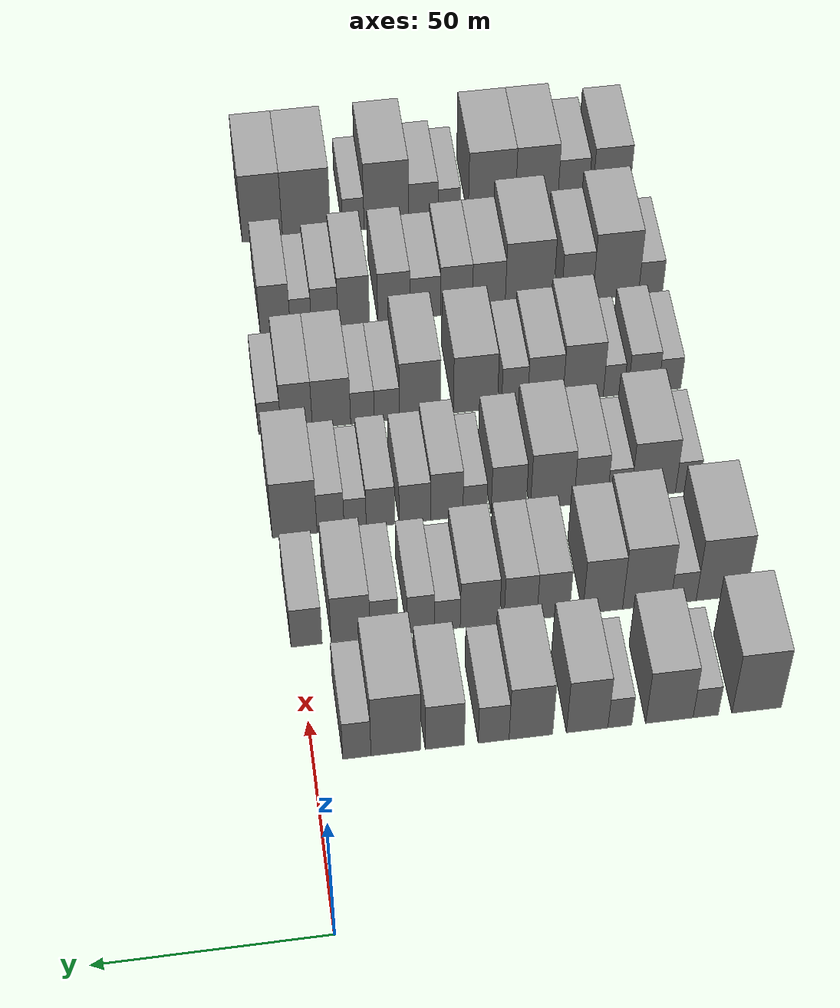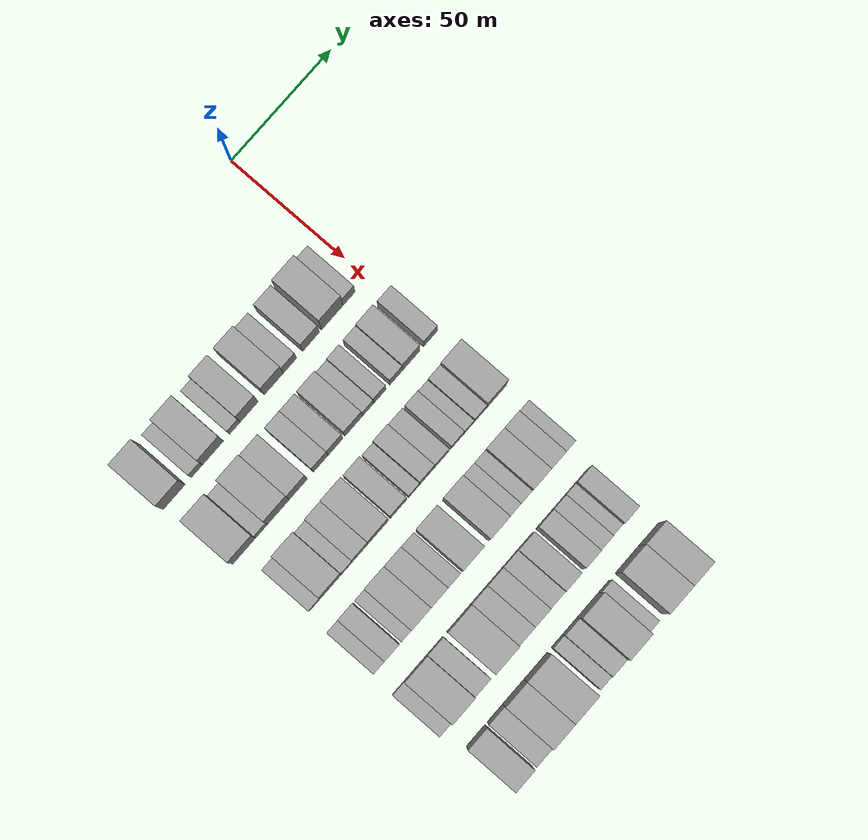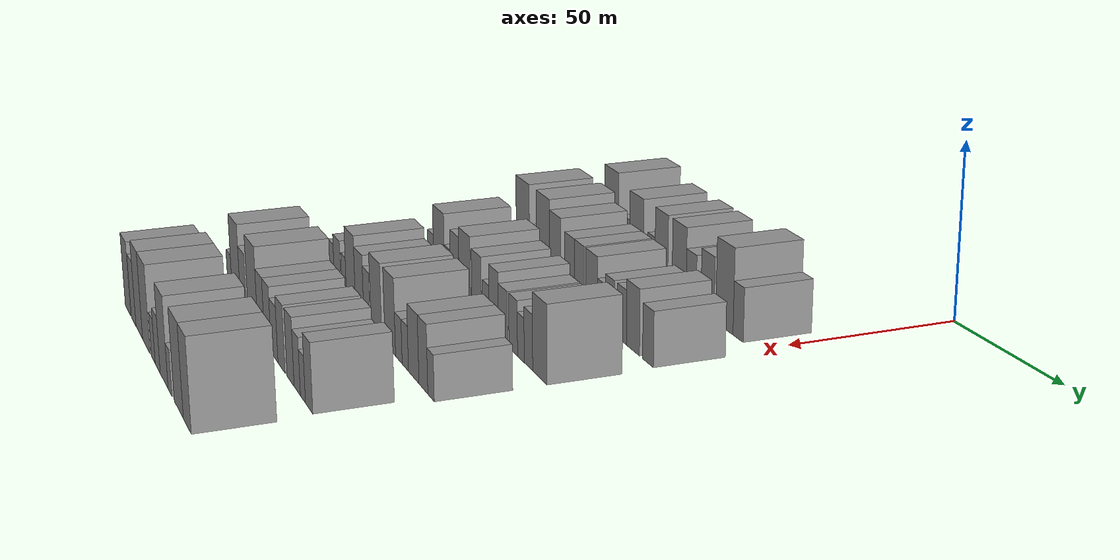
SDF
<sdf version="1.6">
 <world name="default">
  <model name="building_49">
   <static>1</static>
   <pose>50.0000 -95.9349 0 0.000000 0.000000 0.000000</pose>
   <link name="link">
    <pose>0 0 12.00 0 0 0</pose>
    <collision name="collision"><geometry><box><size>20.0000 10.8196 24.0000</size></box></geometry></collision>
    <visual name="visual">
     <cast_shadows>0</cast_shadows>
     <geometry><box><size>20.0000 10.8196 24.0000</size></box></geometry>
     <material>
      <script>
       <uri>model://grey_wall/materials/scripts</uri>
       <uri>model://grey_wall/materials/textures</uri>
       <name>vrc/grey_wall</name>
      </script>
     </material>
    </visual>
   </link>
  </model>
  <model name="building_50">
   <static>1</static>
   <pose>50.0000 -84.7681 0 0.000000 0.000000 0.000000</pose>
   <link name="link">
    <pose>0 0 6.00 0 0 0</pose>
    <collision name="collision"><geometry><box><size>20.0000 5.5140 12.0000</size></box></geometry></collision>
    <visual name="visual">
     <cast_shadows>0</cast_shadows>
     <geometry><box><size>20.0000 5.5140 12.0000</size></box></geometry>
     <material>
      <script>
       <uri>model://grey_wall/materials/scripts</uri>
       <uri>model://grey_wall/materials/textures</uri>
       <name>vrc/grey_wall</name>
      </script>
     </material>
    </visual>
   </link>
  </model>
  <model name="building_51">
   <static>1</static>
   <pose>50.0000 -76.8335 0 0.000000 0.000000 0.000000</pose>
   <link name="link">
    <pose>0 0 10.50 0 0 0</pose>
    <collision name="collision"><geometry><box><size>20.0000 10.3552 21.0000</size></box></geometry></collision>
    <visual name="visual">
     <cast_shadows>0</cast_shadows>
     <geometry><box><size>20.0000 10.3552 21.0000</size></box></geometry>
     <material>
      <script>
       <uri>model://grey_wall/materials/scripts</uri>
       <uri>model://grey_wall/materials/textures</uri>
       <name>vrc/grey_wall</name>
      </script>
     </material>
    </visual>
   </link>
  </model>
  <model name="building_52">
   <static>1</static>
   <pose>50.0000 -66.0445 0 0.000000 0.000000 0.000000</pose>
   <link name="link">
    <pose>0 0 6.00 0 0 0</pose>
    <collision name="collision"><geometry><box><size>20.0000 5.2229 12.0000</size></box></geometry></collision>
    <visual name="visual">
     <cast_shadows>0</cast_shadows>
     <geometry><box><size>20.0000 5.2229 12.0000</size></box></geometry>
     <material>
      <script>
       <uri>model://grey_wall/materials/scripts</uri>
       <uri>model://grey_wall/materials/textures</uri>
       <name>vrc/grey_wall</name>
      </script>
     </material>
    </visual>
   </link>
  </model>
  <model name="building_53">
   <static>1</static>
   <pose>50.0000 -58.9326 0 0.000000 0.000000 0.000000</pose>
   <link name="link">
    <pose>0 0 10.50 0 0 0</pose>
    <collision name="collision"><geometry><box><size>20.0000 9.0008 21.0000</size></box></geometry></collision>
    <visual name="visual">
     <cast_shadows>0</cast_shadows>
     <geometry><box><size>20.0000 9.0008 21.0000</size></box></geometry>
     <material>
      <script>
       <uri>model://grey_wall/materials/scripts</uri>
       <uri>model://grey_wall/materials/textures</uri>
       <name>vrc/grey_wall</name>
      </script>
     </material>
    </visual>
   </link>
  </model>
  <model name="building_54">
   <static>1</static>
   <pose>50.0000 -46.7122 0 0.000000 0.000000 0.000000</pose>
   <link name="link">
    <pose>0 0 10.50 0 0 0</pose>
    <collision name="collision"><geometry><box><size>20.0000 9.4400 21.0000</size></box></geometry></collision>
    <visual name="visual">
     <cast_shadows>0</cast_shadows>
     <geometry><box><size>20.0000 9.4400 21.0000</size></box></geometry>
     <material>
      <script>
       <uri>model://grey_wall/materials/scripts</uri>
       <uri>model://grey_wall/materials/textures</uri>
       <name>vrc/grey_wall</name>
      </script>
     </material>
    </visual>
   </link>
  </model>
  <model name="building_55">
   <static>1</static>
   <pose>50.0000 -38.6631 0 0.000000 0.000000 0.000000</pose>
   <link name="link">
    <pose>0 0 7.50 0 0 0</pose>
    <collision name="collision"><geometry><box><size>20.0000 6.6581 15.0000</size></box></geometry></collision>
    <visual name="visual">
     <cast_shadows>0</cast_shadows>
     <geometry><box><size>20.0000 6.6581 15.0000</size></box></geometry>
     <material>
      <script>
       <uri>model://grey_wall/materials/scripts</uri>
       <uri>model://grey_wall/materials/textures</uri>
       <name>vrc/grey_wall</name>
      </script>
     </material>
    </visual>
   </link>
  </model>
  <model name="building_56">
   <static>1</static>
   <pose>50.0000 -28.1345 0 0.000000 0.000000 0.000000</pose>
   <link name="link">
    <pose>0 0 9.00 0 0 0</pose>
    <collision name="collision"><geometry><box><size>20.0000 8.3990 18.0000</size></box></geometry></collision>
    <visual name="visual">
     <cast_shadows>0</cast_shadows>
     <geometry><box><size>20.0000 8.3990 18.0000</size></box></geometry>
     <material>
      <script>
       <uri>model://grey_wall/materials/scripts</uri>
       <uri>model://grey_wall/materials/textures</uri>
       <name>vrc/grey_wall</name>
      </script>
     </material>
    </visual>
   </link>
  </model>
  <model name="building_57">
   <static>1</static>
   <pose>50.0000 -17.6070 0 0.000000 0.000000 0.000000</pose>
   <link name="link">
    <pose>0 0 12.00 0 0 0</pose>
    <collision name="collision"><geometry><box><size>20.0000 10.6561 24.0000</size></box></geometry></collision>
    <visual name="visual">
     <cast_shadows>0</cast_shadows>
     <geometry><box><size>20.0000 10.6561 24.0000</size></box></geometry>
     <material>
      <script>
       <uri>model://grey_wall/materials/scripts</uri>
       <uri>model://grey_wall/materials/textures</uri>
       <name>vrc/grey_wall</name>
      </script>
     </material>
    </visual>
   </link>
  </model>
  <model name="building_58">
   <static>1</static>
   <pose>50.0000 -9.2561 0 0.000000 0.000000 0.000000</pose>
   <link name="link">
    <pose>0 0 7.50 0 0 0</pose>
    <collision name="collision"><geometry><box><size>20.0000 6.0458 15.0000</size></box></geometry></collision>
    <visual name="visual">
     <cast_shadows>0</cast_shadows>
     <geometry><box><size>20.0000 6.0458 15.0000</size></box></geometry>
     <material>
      <script>
       <uri>model://grey_wall/materials/scripts</uri>
       <uri>model://grey_wall/materials/textures</uri>
       <name>vrc/grey_wall</name>
      </script>
     </material>
    </visual>
   </link>
  </model>
  <model name="building_165">
   <static>1</static>
   <pose>79.0000 -94.0342 0 0.000000 0.000000 0.000000</pose>
   <link name="link">
    <pose>0 0 12.00 0 0 0</pose>
    <collision name="collision"><geometry><box><size>20.0000 11.3489 24.0000</size></box></geometry></collision>
    <visual name="visual">
     <cast_shadows>0</cast_shadows>
     <geometry><box><size>20.0000 11.3489 24.0000</size></box></geometry>
     <material>
      <script>
       <uri>model://grey_wall/materials/scripts</uri>
       <uri>model://grey_wall/materials/textures</uri>
       <name>vrc/grey_wall</name>
      </script>
     </material>
    </visual>
   </link>
  </model>
  <model name="building_166">
   <static>1</static>
   <pose>79.0000 -85.4858 0 0.000000 0.000000 0.000000</pose>
   <link name="link">
    <pose>0 0 6.00 0 0 0</pose>
    <collision name="collision"><geometry><box><size>20.0000 5.7478 12.0000</size></box></geometry></collision>
    <visual name="visual">
     <cast_shadows>0</cast_shadows>
     <geometry><box><size>20.0000 5.7478 12.0000</size></box></geometry>
     <material>
      <script>
       <uri>model://grey_wall/materials/scripts</uri>
       <uri>model://grey_wall/materials/textures</uri>
       <name>vrc/grey_wall</name>
      </script>
     </material>
    </visual>
   </link>
  </model>
  <model name="building_167">
   <static>1</static>
   <pose>79.0000 -77.2074 0 0.000000 0.000000 0.000000</pose>
   <link name="link">
    <pose>0 0 12.00 0 0 0</pose>
    <collision name="collision"><geometry><box><size>20.0000 10.8091 24.0000</size></box></geometry></collision>
    <visual name="visual">
     <cast_shadows>0</cast_shadows>
     <geometry><box><size>20.0000 10.8091 24.0000</size></box></geometry>
     <material>
      <script>
       <uri>model://grey_wall/materials/scripts</uri>
       <uri>model://grey_wall/materials/textures</uri>
       <name>vrc/grey_wall</name>
      </script>
     </material>
    </visual>
   </link>
  </model>
  <model name="building_168">
   <static>1</static>
   <pose>79.0000 -67.3506 0 0.000000 0.000000 0.000000</pose>
   <link name="link">
    <pose>0 0 10.50 0 0 0</pose>
    <collision name="collision"><geometry><box><size>20.0000 8.9043 21.0000</size></box></geometry></collision>
    <visual name="visual">
     <cast_shadows>0</cast_shadows>
     <geometry><box><size>20.0000 8.9043 21.0000</size></box></geometry>
     <material>
      <script>
       <uri>model://grey_wall/materials/scripts</uri>
       <uri>model://grey_wall/materials/textures</uri>
       <name>vrc/grey_wall</name>
      </script>
     </material>
    </visual>
   </link>
  </model>
  <model name="building_169">
   <static>1</static>
   <pose>79.0000 -56.2754 0 0.000000 0.000000 0.000000</pose>
   <link name="link">
    <pose>0 0 9.00 0 0 0</pose>
    <collision name="collision"><geometry><box><size>20.0000 7.2462 18.0000</size></box></geometry></collision>
    <visual name="visual">
     <cast_shadows>0</cast_shadows>
     <geometry><box><size>20.0000 7.2462 18.0000</size></box></geometry>
     <material>
      <script>
       <uri>model://grey_wall/materials/scripts</uri>
       <uri>model://grey_wall/materials/textures</uri>
       <name>vrc/grey_wall</name>
      </script>
     </material>
    </visual>
   </link>
  </model>
  <model name="building_170">
   <static>1</static>
   <pose>79.0000 -48.9770 0 0.000000 0.000000 0.000000</pose>
   <link name="link">
    <pose>0 0 9.00 0 0 0</pose>
    <collision name="collision"><geometry><box><size>20.0000 7.3505 18.0000</size></box></geometry></collision>
    <visual name="visual">
     <cast_shadows>0</cast_shadows>
     <geometry><box><size>20.0000 7.3505 18.0000</size></box></geometry>
     <material>
      <script>
       <uri>model://grey_wall/materials/scripts</uri>
       <uri>model://grey_wall/materials/textures</uri>
       <name>vrc/grey_wall</name>
      </script>
     </material>
    </visual>
   </link>
  </model>
  <model name="building_171">
   <static>1</static>
   <pose>79.0000 -39.9403 0 0.000000 0.000000 0.000000</pose>
   <link name="link">
    <pose>0 0 9.00 0 0 0</pose>
    <collision name="collision"><geometry><box><size>20.0000 8.7228 18.0000</size></box></geometry></collision>
    <visual name="visual">
     <cast_shadows>0</cast_shadows>
     <geometry><box><size>20.0000 8.7228 18.0000</size></box></geometry>
     <material>
      <script>
       <uri>model://grey_wall/materials/scripts</uri>
       <uri>model://grey_wall/materials/textures</uri>
       <name>vrc/grey_wall</name>
      </script>
     </material>
    </visual>
   </link>
  </model>
  <model name="building_172">
   <static>1</static>
   <pose>79.0000 -32.7329 0 0.000000 0.000000 0.000000</pose>
   <link name="link">
    <pose>0 0 6.00 0 0 0</pose>
    <collision name="collision"><geometry><box><size>20.0000 5.6920 12.0000</size></box></geometry></collision>
    <visual name="visual">
     <cast_shadows>0</cast_shadows>
     <geometry><box><size>20.0000 5.6920 12.0000</size></box></geometry>
     <material>
      <script>
       <uri>model://grey_wall/materials/scripts</uri>
       <uri>model://grey_wall/materials/textures</uri>
       <name>vrc/grey_wall</name>
      </script>
     </material>
    </visual>
   </link>
  </model>
  <model name="building_173">
   <static>1</static>
   <pose>79.0000 -26.8521 0 0.000000 0.000000 0.000000</pose>
   <link name="link">
    <pose>0 0 7.50 0 0 0</pose>
    <collision name="collision"><geometry><box><size>20.0000 6.0697 15.0000</size></box></geometry></collision>
    <visual name="visual">
     <cast_shadows>0</cast_shadows>
     <geometry><box><size>20.0000 6.0697 15.0000</size></box></geometry>
     <material>
      <script>
       <uri>model://grey_wall/materials/scripts</uri>
       <uri>model://grey_wall/materials/textures</uri>
       <name>vrc/grey_wall</name>
      </script>
     </material>
    </visual>
   </link>
  </model>
  <model name="building_174">
   <static>1</static>
   <pose>79.0000 -18.7270 0 0.000000 0.000000 0.000000</pose>
   <link name="link">
    <pose>0 0 7.50 0 0 0</pose>
    <collision name="collision"><geometry><box><size>20.0000 6.1805 15.0000</size></box></geometry></collision>
    <visual name="visual">
     <cast_shadows>0</cast_shadows>
     <geometry><box><size>20.0000 6.1805 15.0000</size></box></geometry>
     <material>
      <script>
       <uri>model://grey_wall/materials/scripts</uri>
       <uri>model://grey_wall/materials/textures</uri>
       <name>vrc/grey_wall</name>
      </script>
     </material>
    </visual>
   </link>
  </model>
  <model name="building_175">
   <static>1</static>
   <pose>79.0000 -11.3452 0 0.000000 0.000000 0.000000</pose>
   <link name="link">
    <pose>0 0 9.00 0 0 0</pose>
    <collision name="collision"><geometry><box><size>20.0000 8.5832 18.0000</size></box></geometry></collision>
    <visual name="visual">
     <cast_shadows>0</cast_shadows>
     <geometry><box><size>20.0000 8.5832 18.0000</size></box></geometry>
     <material>
      <script>
       <uri>model://grey_wall/materials/scripts</uri>
       <uri>model://grey_wall/materials/textures</uri>
       <name>vrc/grey_wall</name>
      </script>
     </material>
    </visual>
   </link>
  </model>
  <model name="building_176">
   <static>1</static>
   <pose>79.0000 -1.6232 0 0.000000 0.000000 0.000000</pose>
   <link name="link">
    <pose>0 0 7.50 0 0 0</pose>
    <collision name="collision"><geometry><box><size>20.0000 6.8607 15.0000</size></box></geometry></collision>
    <visual name="visual">
     <cast_shadows>0</cast_shadows>
     <geometry><box><size>20.0000 6.8607 15.0000</size></box></geometry>
     <material>
      <script>
       <uri>model://grey_wall/materials/scripts</uri>
       <uri>model://grey_wall/materials/textures</uri>
       <name>vrc/grey_wall</name>
      </script>
     </material>
    </visual>
   </link>
  </model>
  <model name="building_277">
   <static>1</static>
   <pose>108.0000 -91.9827 0 0.000000 0.000000 0.000000</pose>
   <link name="link">
    <pose>0 0 6.00 0 0 0</pose>
    <collision name="collision"><geometry><box><size>20.0000 5.5000 12.0000</size></box></geometry></collision>
    <visual name="visual">
     <cast_shadows>0</cast_shadows>
     <geometry><box><size>20.0000 5.5000 12.0000</size></box></geometry>
     <material>
      <script>
       <uri>model://grey_wall/materials/scripts</uri>
       <uri>model://grey_wall/materials/textures</uri>
       <name>vrc/grey_wall</name>
      </script>
     </material>
    </visual>
   </link>
  </model>
  <model name="building_278">
   <static>1</static>
   <pose>108.0000 -84.0711 0 0.000000 0.000000 0.000000</pose>
   <link name="link">
    <pose>0 0 10.50 0 0 0</pose>
    <collision name="collision"><geometry><box><size>20.0000 10.3232 21.0000</size></box></geometry></collision>
    <visual name="visual">
     <cast_shadows>0</cast_shadows>
     <geometry><box><size>20.0000 10.3232 21.0000</size></box></geometry>
     <material>
      <script>
       <uri>model://grey_wall/materials/scripts</uri>
       <uri>model://grey_wall/materials/textures</uri>
       <name>vrc/grey_wall</name>
      </script>
     </material>
    </visual>
   </link>
  </model>
  <model name="building_279">
   <static>1</static>
   <pose>108.0000 -76.1968 0 0.000000 0.000000 0.000000</pose>
   <link name="link">
    <pose>0 0 6.00 0 0 0</pose>
    <collision name="collision"><geometry><box><size>20.0000 5.4254 12.0000</size></box></geometry></collision>
    <visual name="visual">
     <cast_shadows>0</cast_shadows>
     <geometry><box><size>20.0000 5.4254 12.0000</size></box></geometry>
     <material>
      <script>
       <uri>model://grey_wall/materials/scripts</uri>
       <uri>model://grey_wall/materials/textures</uri>
       <name>vrc/grey_wall</name>
      </script>
     </material>
    </visual>
   </link>
  </model>
  <model name="building_280">
   <static>1</static>
   <pose>108.0000 -69.6270 0 0.000000 0.000000 0.000000</pose>
   <link name="link">
    <pose>0 0 9.00 0 0 0</pose>
    <collision name="collision"><geometry><box><size>20.0000 7.7142 18.0000</size></box></geometry></collision>
    <visual name="visual">
     <cast_shadows>0</cast_shadows>
     <geometry><box><size>20.0000 7.7142 18.0000</size></box></geometry>
     <material>
      <script>
       <uri>model://grey_wall/materials/scripts</uri>
       <uri>model://grey_wall/materials/textures</uri>
       <name>vrc/grey_wall</name>
      </script>
     </material>
    </visual>
   </link>
  </model>
  <model name="building_281">
   <static>1</static>
   <pose>108.0000 -60.7673 0 0.000000 0.000000 0.000000</pose>
   <link name="link">
    <pose>0 0 10.50 0 0 0</pose>
    <collision name="collision"><geometry><box><size>20.0000 10.0051 21.0000</size></box></geometry></collision>
    <visual name="visual">
     <cast_shadows>0</cast_shadows>
     <geometry><box><size>20.0000 10.0051 21.0000</size></box></geometry>
     <material>
      <script>
       <uri>model://grey_wall/materials/scripts</uri>
       <uri>model://grey_wall/materials/textures</uri>
       <name>vrc/grey_wall</name>
      </script>
     </material>
    </visual>
   </link>
  </model>
  <model name="building_282">
   <static>1</static>
   <pose>108.0000 -50.7699 0 0.000000 0.000000 0.000000</pose>
   <link name="link">
    <pose>0 0 9.00 0 0 0</pose>
    <collision name="collision"><geometry><box><size>20.0000 7.9898 18.0000</size></box></geometry></collision>
    <visual name="visual">
     <cast_shadows>0</cast_shadows>
     <geometry><box><size>20.0000 7.9898 18.0000</size></box></geometry>
     <material>
      <script>
       <uri>model://grey_wall/materials/scripts</uri>
       <uri>model://grey_wall/materials/textures</uri>
       <name>vrc/grey_wall</name>
      </script>
     </material>
    </visual>
   </link>
  </model>
  <model name="building_283">
   <static>1</static>
   <pose>108.0000 -43.0398 0 0.000000 0.000000 0.000000</pose>
   <link name="link">
    <pose>0 0 6.00 0 0 0</pose>
    <collision name="collision"><geometry><box><size>20.0000 5.4704 12.0000</size></box></geometry></collision>
    <visual name="visual">
     <cast_shadows>0</cast_shadows>
     <geometry><box><size>20.0000 5.4704 12.0000</size></box></geometry>
     <material>
      <script>
       <uri>model://grey_wall/materials/scripts</uri>
       <uri>model://grey_wall/materials/textures</uri>
       <name>vrc/grey_wall</name>
      </script>
     </material>
    </visual>
   </link>
  </model>
  <model name="building_284">
   <static>1</static>
   <pose>108.0000 -36.6270 0 0.000000 0.000000 0.000000</pose>
   <link name="link">
    <pose>0 0 9.00 0 0 0</pose>
    <collision name="collision"><geometry><box><size>20.0000 7.3550 18.0000</size></box></geometry></collision>
    <visual name="visual">
     <cast_shadows>0</cast_shadows>
     <geometry><box><size>20.0000 7.3550 18.0000</size></box></geometry>
     <material>
      <script>
       <uri>model://grey_wall/materials/scripts</uri>
       <uri>model://grey_wall/materials/textures</uri>
       <name>vrc/grey_wall</name>
      </script>
     </material>
    </visual>
   </link>
  </model>
  <model name="building_285">
   <static>1</static>
   <pose>108.0000 -29.3733 0 0.000000 0.000000 0.000000</pose>
   <link name="link">
    <pose>0 0 7.50 0 0 0</pose>
    <collision name="collision"><geometry><box><size>20.0000 7.1524 15.0000</size></box></geometry></collision>
    <visual name="visual">
     <cast_shadows>0</cast_shadows>
     <geometry><box><size>20.0000 7.1524 15.0000</size></box></geometry>
     <material>
      <script>
       <uri>model://grey_wall/materials/scripts</uri>
       <uri>model://grey_wall/materials/textures</uri>
       <name>vrc/grey_wall</name>
      </script>
     </material>
    </visual>
   </link>
  </model>
  <model name="building_286">
   <static>1</static>
   <pose>108.0000 -21.5494 0 0.000000 0.000000 0.000000</pose>
   <link name="link">
    <pose>0 0 7.50 0 0 0</pose>
    <collision name="collision"><geometry><box><size>20.0000 6.4955 15.0000</size></box></geometry></collision>
    <visual name="visual">
     <cast_shadows>0</cast_shadows>
     <geometry><box><size>20.0000 6.4955 15.0000</size></box></geometry>
     <material>
      <script>
       <uri>model://grey_wall/materials/scripts</uri>
       <uri>model://grey_wall/materials/textures</uri>
       <name>vrc/grey_wall</name>
      </script>
     </material>
    </visual>
   </link>
  </model>
  <model name="building_287">
   <static>1</static>
   <pose>108.0000 -15.7955 0 0.000000 0.000000 0.000000</pose>
   <link name="link">
    <pose>0 0 6.00 0 0 0</pose>
    <collision name="collision"><geometry><box><size>20.0000 5.0123 12.0000</size></box></geometry></collision>
    <visual name="visual">
     <cast_shadows>0</cast_shadows>
     <geometry><box><size>20.0000 5.0123 12.0000</size></box></geometry>
     <material>
      <script>
       <uri>model://grey_wall/materials/scripts</uri>
       <uri>model://grey_wall/materials/textures</uri>
       <name>vrc/grey_wall</name>
      </script>
     </material>
    </visual>
   </link>
  </model>
  <model name="building_288">
   <static>1</static>
   <pose>108.0000 -10.2158 0 0.000000 0.000000 0.000000</pose>
   <link name="link">
    <pose>0 0 7.50 0 0 0</pose>
    <collision name="collision"><geometry><box><size>20.0000 6.1470 15.0000</size></box></geometry></collision>
    <visual name="visual">
     <cast_shadows>0</cast_shadows>
     <geometry><box><size>20.0000 6.1470 15.0000</size></box></geometry>
     <material>
      <script>
       <uri>model://grey_wall/materials/scripts</uri>
       <uri>model://grey_wall/materials/textures</uri>
       <name>vrc/grey_wall</name>
      </script>
     </material>
    </visual>
   </link>
  </model>
  <model name="building_289">
   <static>1</static>
   <pose>108.0000 -2.0700 0 0.000000 0.000000 0.000000</pose>
   <link name="link">
    <pose>0 0 10.50 0 0 0</pose>
    <collision name="collision"><geometry><box><size>20.0000 10.1448 21.0000</size></box></geometry></collision>
    <visual name="visual">
     <cast_shadows>0</cast_shadows>
     <geometry><box><size>20.0000 10.1448 21.0000</size></box></geometry>
     <material>
      <script>
       <uri>model://grey_wall/materials/scripts</uri>
       <uri>model://grey_wall/materials/textures</uri>
       <name>vrc/grey_wall</name>
      </script>
     </material>
    </visual>
   </link>
  </model>
  <model name="building_394">
   <static>1</static>
   <pose>137.0000 -93.3943 0 0.000000 0.000000 0.000000</pose>
   <link name="link">
    <pose>0 0 6.00 0 0 0</pose>
    <collision name="collision"><geometry><box><size>20.0000 5.3708 12.0000</size></box></geometry></collision>
    <visual name="visual">
     <cast_shadows>0</cast_shadows>
     <geometry><box><size>20.0000 5.3708 12.0000</size></box></geometry>
     <material>
      <script>
       <uri>model://grey_wall/materials/scripts</uri>
       <uri>model://grey_wall/materials/textures</uri>
       <name>vrc/grey_wall</name>
      </script>
     </material>
    </visual>
   </link>
  </model>
  <model name="building_395">
   <static>1</static>
   <pose>137.0000 -87.1023 0 0.000000 0.000000 0.000000</pose>
   <link name="link">
    <pose>0 0 7.50 0 0 0</pose>
    <collision name="collision"><geometry><box><size>20.0000 7.2132 15.0000</size></box></geometry></collision>
    <visual name="visual">
     <cast_shadows>0</cast_shadows>
     <geometry><box><size>20.0000 7.2132 15.0000</size></box></geometry>
     <material>
      <script>
       <uri>model://grey_wall/materials/scripts</uri>
       <uri>model://grey_wall/materials/textures</uri>
       <name>vrc/grey_wall</name>
      </script>
     </material>
    </visual>
   </link>
  </model>
  <model name="building_396">
   <static>1</static>
   <pose>137.0000 -80.0476 0 0.000000 0.000000 0.000000</pose>
   <link name="link">
    <pose>0 0 6.00 0 0 0</pose>
    <collision name="collision"><geometry><box><size>20.0000 4.8962 12.0000</size></box></geometry></collision>
    <visual name="visual">
     <cast_shadows>0</cast_shadows>
     <geometry><box><size>20.0000 4.8962 12.0000</size></box></geometry>
     <material>
      <script>
       <uri>model://grey_wall/materials/scripts</uri>
       <uri>model://grey_wall/materials/textures</uri>
       <name>vrc/grey_wall</name>
      </script>
     </material>
    </visual>
   </link>
  </model>
  <model name="building_397">
   <static>1</static>
   <pose>137.0000 -72.8188 0 0.000000 0.000000 0.000000</pose>
   <link name="link">
    <pose>0 0 10.50 0 0 0</pose>
    <collision name="collision"><geometry><box><size>20.0000 9.5615 21.0000</size></box></geometry></collision>
    <visual name="visual">
     <cast_shadows>0</cast_shadows>
     <geometry><box><size>20.0000 9.5615 21.0000</size></box></geometry>
     <material>
      <script>
       <uri>model://grey_wall/materials/scripts</uri>
       <uri>model://grey_wall/materials/textures</uri>
       <name>vrc/grey_wall</name>
      </script>
     </material>
    </visual>
   </link>
  </model>
  <model name="building_398">
   <static>1</static>
   <pose>137.0000 -63.8646 0 0.000000 0.000000 0.000000</pose>
   <link name="link">
    <pose>0 0 9.00 0 0 0</pose>
    <collision name="collision"><geometry><box><size>20.0000 8.3469 18.0000</size></box></geometry></collision>
    <visual name="visual">
     <cast_shadows>0</cast_shadows>
     <geometry><box><size>20.0000 8.3469 18.0000</size></box></geometry>
     <material>
      <script>
       <uri>model://grey_wall/materials/scripts</uri>
       <uri>model://grey_wall/materials/textures</uri>
       <name>vrc/grey_wall</name>
      </script>
     </material>
    </visual>
   </link>
  </model>
  <model name="building_399">
   <static>1</static>
   <pose>137.0000 -56.6264 0 0.000000 0.000000 0.000000</pose>
   <link name="link">
    <pose>0 0 7.50 0 0 0</pose>
    <collision name="collision"><geometry><box><size>20.0000 6.1295 15.0000</size></box></geometry></collision>
    <visual name="visual">
     <cast_shadows>0</cast_shadows>
     <geometry><box><size>20.0000 6.1295 15.0000</size></box></geometry>
     <material>
      <script>
       <uri>model://grey_wall/materials/scripts</uri>
       <uri>model://grey_wall/materials/textures</uri>
       <name>vrc/grey_wall</name>
      </script>
     </material>
    </visual>
   </link>
  </model>
  <model name="building_400">
   <static>1</static>
   <pose>137.0000 -47.3902 0 0.000000 0.000000 0.000000</pose>
   <link name="link">
    <pose>0 0 10.50 0 0 0</pose>
    <collision name="collision"><geometry><box><size>20.0000 10.3430 21.0000</size></box></geometry></collision>
    <visual name="visual">
     <cast_shadows>0</cast_shadows>
     <geometry><box><size>20.0000 10.3430 21.0000</size></box></geometry>
     <material>
      <script>
       <uri>model://grey_wall/materials/scripts</uri>
       <uri>model://grey_wall/materials/textures</uri>
       <name>vrc/grey_wall</name>
      </script>
     </material>
    </visual>
   </link>
  </model>
  <model name="building_401">
   <static>1</static>
   <pose>137.0000 -34.4044 0 0.000000 0.000000 0.000000</pose>
   <link name="link">
    <pose>0 0 10.50 0 0 0</pose>
    <collision name="collision"><geometry><box><size>20.0000 9.6286 21.0000</size></box></geometry></collision>
    <visual name="visual">
     <cast_shadows>0</cast_shadows>
     <geometry><box><size>20.0000 9.6286 21.0000</size></box></geometry>
     <material>
      <script>
       <uri>model://grey_wall/materials/scripts</uri>
       <uri>model://grey_wall/materials/textures</uri>
       <name>vrc/grey_wall</name>
      </script>
     </material>
    </visual>
   </link>
  </model>
  <model name="building_402">
   <static>1</static>
   <pose>137.0000 -26.6426 0 0.000000 0.000000 0.000000</pose>
   <link name="link">
    <pose>0 0 6.00 0 0 0</pose>
    <collision name="collision"><geometry><box><size>20.0000 5.8951 12.0000</size></box></geometry></collision>
    <visual name="visual">
     <cast_shadows>0</cast_shadows>
     <geometry><box><size>20.0000 5.8951 12.0000</size></box></geometry>
     <material>
      <script>
       <uri>model://grey_wall/materials/scripts</uri>
       <uri>model://grey_wall/materials/textures</uri>
       <name>vrc/grey_wall</name>
      </script>
     </material>
    </visual>
   </link>
  </model>
  <model name="building_403">
   <static>1</static>
   <pose>137.0000 -20.9336 0 0.000000 0.000000 0.000000</pose>
   <link name="link">
    <pose>0 0 6.00 0 0 0</pose>
    <collision name="collision"><geometry><box><size>20.0000 5.5229 12.0000</size></box></geometry></collision>
    <visual name="visual">
     <cast_shadows>0</cast_shadows>
     <geometry><box><size>20.0000 5.5229 12.0000</size></box></geometry>
     <material>
      <script>
       <uri>model://grey_wall/materials/scripts</uri>
       <uri>model://grey_wall/materials/textures</uri>
       <name>vrc/grey_wall</name>
      </script>
     </material>
    </visual>
   </link>
  </model>
  <model name="building_404">
   <static>1</static>
   <pose>137.0000 -13.7014 0 0.000000 0.000000 0.000000</pose>
   <link name="link">
    <pose>0 0 9.00 0 0 0</pose>
    <collision name="collision"><geometry><box><size>20.0000 8.9415 18.0000</size></box></geometry></collision>
    <visual name="visual">
     <cast_shadows>0</cast_shadows>
     <geometry><box><size>20.0000 8.9415 18.0000</size></box></geometry>
     <material>
      <script>
       <uri>model://grey_wall/materials/scripts</uri>
       <uri>model://grey_wall/materials/textures</uri>
       <name>vrc/grey_wall</name>
      </script>
     </material>
    </visual>
   </link>
  </model>
  <model name="building_405">
   <static>1</static>
   <pose>137.0000 -5.5773 0 0.000000 0.000000 0.000000</pose>
   <link name="link">
    <pose>0 0 9.00 0 0 0</pose>
    <collision name="collision"><geometry><box><size>20.0000 7.3066 18.0000</size></box></geometry></collision>
    <visual name="visual">
     <cast_shadows>0</cast_shadows>
     <geometry><box><size>20.0000 7.3066 18.0000</size></box></geometry>
     <material>
      <script>
       <uri>model://grey_wall/materials/scripts</uri>
       <uri>model://grey_wall/materials/textures</uri>
       <name>vrc/grey_wall</name>
      </script>
     </material>
    </visual>
   </link>
  </model>
  <model name="building_406">
   <static>1</static>
   <pose>137.0000 0.6735 0 0.000000 0.000000 0.000000</pose>
   <link name="link">
    <pose>0 0 6.00 0 0 0</pose>
    <collision name="collision"><geometry><box><size>20.0000 5.1950 12.0000</size></box></geometry></collision>
    <visual name="visual">
     <cast_shadows>0</cast_shadows>
     <geometry><box><size>20.0000 5.1950 12.0000</size></box></geometry>
     <material>
      <script>
       <uri>model://grey_wall/materials/scripts</uri>
       <uri>model://grey_wall/materials/textures</uri>
       <name>vrc/grey_wall</name>
      </script>
     </material>
    </visual>
   </link>
  </model>
  <model name="building_517">
   <static>1</static>
   <pose>166.0000 -94.2477 0 0.000000 0.000000 0.000000</pose>
   <link name="link">
    <pose>0 0 6.00 0 0 0</pose>
    <collision name="collision"><geometry><box><size>20.0000 5.8900 12.0000</size></box></geometry></collision>
    <visual name="visual">
     <cast_shadows>0</cast_shadows>
     <geometry><box><size>20.0000 5.8900 12.0000</size></box></geometry>
     <material>
      <script>
       <uri>model://grey_wall/materials/scripts</uri>
       <uri>model://grey_wall/materials/textures</uri>
       <name>vrc/grey_wall</name>
      </script>
     </material>
    </visual>
   </link>
  </model>
  <model name="building_518">
   <static>1</static>
   <pose>166.0000 -85.7272 0 0.000000 0.000000 0.000000</pose>
   <link name="link">
    <pose>0 0 12.00 0 0 0</pose>
    <collision name="collision"><geometry><box><size>20.0000 11.1509 24.0000</size></box></geometry></collision>
    <visual name="visual">
     <cast_shadows>0</cast_shadows>
     <geometry><box><size>20.0000 11.1509 24.0000</size></box></geometry>
     <material>
      <script>
       <uri>model://grey_wall/materials/scripts</uri>
       <uri>model://grey_wall/materials/textures</uri>
       <name>vrc/grey_wall</name>
      </script>
     </material>
    </visual>
   </link>
  </model>
  <model name="building_519">
   <static>1</static>
   <pose>166.0000 -76.3242 0 0.000000 0.000000 0.000000</pose>
   <link name="link">
    <pose>0 0 9.00 0 0 0</pose>
    <collision name="collision"><geometry><box><size>20.0000 7.6551 18.0000</size></box></geometry></collision>
    <visual name="visual">
     <cast_shadows>0</cast_shadows>
     <geometry><box><size>20.0000 7.6551 18.0000</size></box></geometry>
     <material>
      <script>
       <uri>model://grey_wall/materials/scripts</uri>
       <uri>model://grey_wall/materials/textures</uri>
       <name>vrc/grey_wall</name>
      </script>
     </material>
    </visual>
   </link>
  </model>
  <model name="building_520">
   <static>1</static>
   <pose>166.0000 -64.6501 0 0.000000 0.000000 0.000000</pose>
   <link name="link">
    <pose>0 0 12.00 0 0 0</pose>
    <collision name="collision"><geometry><box><size>20.0000 11.6931 24.0000</size></box></geometry></collision>
    <visual name="visual">
     <cast_shadows>0</cast_shadows>
     <geometry><box><size>20.0000 11.6931 24.0000</size></box></geometry>
     <material>
      <script>
       <uri>model://grey_wall/materials/scripts</uri>
       <uri>model://grey_wall/materials/textures</uri>
       <name>vrc/grey_wall</name>
      </script>
     </material>
    </visual>
   </link>
  </model>
  <model name="building_521">
   <static>1</static>
   <pose>166.0000 -54.8337 0 0.000000 0.000000 0.000000</pose>
   <link name="link">
    <pose>0 0 9.00 0 0 0</pose>
    <collision name="collision"><geometry><box><size>20.0000 7.9397 18.0000</size></box></geometry></collision>
    <visual name="visual">
     <cast_shadows>0</cast_shadows>
     <geometry><box><size>20.0000 7.9397 18.0000</size></box></geometry>
     <material>
      <script>
       <uri>model://grey_wall/materials/scripts</uri>
       <uri>model://grey_wall/materials/textures</uri>
       <name>vrc/grey_wall</name>
      </script>
     </material>
    </visual>
   </link>
  </model>
  <model name="building_522">
   <static>1</static>
   <pose>166.0000 -47.0372 0 0.000000 0.000000 0.000000</pose>
   <link name="link">
    <pose>0 0 9.00 0 0 0</pose>
    <collision name="collision"><geometry><box><size>20.0000 7.6534 18.0000</size></box></geometry></collision>
    <visual name="visual">
     <cast_shadows>0</cast_shadows>
     <geometry><box><size>20.0000 7.6534 18.0000</size></box></geometry>
     <material>
      <script>
       <uri>model://grey_wall/materials/scripts</uri>
       <uri>model://grey_wall/materials/textures</uri>
       <name>vrc/grey_wall</name>
      </script>
     </material>
    </visual>
   </link>
  </model>
  <model name="building_523">
   <static>1</static>
   <pose>166.0000 -39.5444 0 0.000000 0.000000 0.000000</pose>
   <link name="link">
    <pose>0 0 7.50 0 0 0</pose>
    <collision name="collision"><geometry><box><size>20.0000 7.3321 15.0000</size></box></geometry></collision>
    <visual name="visual">
     <cast_shadows>0</cast_shadows>
     <geometry><box><size>20.0000 7.3321 15.0000</size></box></geometry>
     <material>
      <script>
       <uri>model://grey_wall/materials/scripts</uri>
       <uri>model://grey_wall/materials/textures</uri>
       <name>vrc/grey_wall</name>
      </script>
     </material>
    </visual>
   </link>
  </model>
  <model name="building_524">
   <static>1</static>
   <pose>166.0000 -31.9901 0 0.000000 0.000000 0.000000</pose>
   <link name="link">
    <pose>0 0 9.00 0 0 0</pose>
    <collision name="collision"><geometry><box><size>20.0000 7.7765 18.0000</size></box></geometry></collision>
    <visual name="visual">
     <cast_shadows>0</cast_shadows>
     <geometry><box><size>20.0000 7.7765 18.0000</size></box></geometry>
     <material>
      <script>
       <uri>model://grey_wall/materials/scripts</uri>
       <uri>model://grey_wall/materials/textures</uri>
       <name>vrc/grey_wall</name>
      </script>
     </material>
    </visual>
   </link>
  </model>
  <model name="building_525">
   <static>1</static>
   <pose>166.0000 -22.3334 0 0.000000 0.000000 0.000000</pose>
   <link name="link">
    <pose>0 0 9.00 0 0 0</pose>
    <collision name="collision"><geometry><box><size>20.0000 7.5368 18.0000</size></box></geometry></collision>
    <visual name="visual">
     <cast_shadows>0</cast_shadows>
     <geometry><box><size>20.0000 7.5368 18.0000</size></box></geometry>
     <material>
      <script>
       <uri>model://grey_wall/materials/scripts</uri>
       <uri>model://grey_wall/materials/textures</uri>
       <name>vrc/grey_wall</name>
      </script>
     </material>
    </visual>
   </link>
  </model>
  <model name="building_526">
   <static>1</static>
   <pose>166.0000 -15.3813 0 0.000000 0.000000 0.000000</pose>
   <link name="link">
    <pose>0 0 7.50 0 0 0</pose>
    <collision name="collision"><geometry><box><size>20.0000 6.3674 15.0000</size></box></geometry></collision>
    <visual name="visual">
     <cast_shadows>0</cast_shadows>
     <geometry><box><size>20.0000 6.3674 15.0000</size></box></geometry>
     <material>
      <script>
       <uri>model://grey_wall/materials/scripts</uri>
       <uri>model://grey_wall/materials/textures</uri>
       <name>vrc/grey_wall</name>
      </script>
     </material>
    </visual>
   </link>
  </model>
  <model name="building_527">
   <static>1</static>
   <pose>166.0000 -9.6643 0 0.000000 0.000000 0.000000</pose>
   <link name="link">
    <pose>0 0 6.00 0 0 0</pose>
    <collision name="collision"><geometry><box><size>20.0000 5.0666 12.0000</size></box></geometry></collision>
    <visual name="visual">
     <cast_shadows>0</cast_shadows>
     <geometry><box><size>20.0000 5.0666 12.0000</size></box></geometry>
     <material>
      <script>
       <uri>model://grey_wall/materials/scripts</uri>
       <uri>model://grey_wall/materials/textures</uri>
       <name>vrc/grey_wall</name>
      </script>
     </material>
    </visual>
   </link>
  </model>
  <model name="building_528">
   <static>1</static>
   <pose>166.0000 -3.5299 0 0.000000 0.000000 0.000000</pose>
   <link name="link">
    <pose>0 0 9.00 0 0 0</pose>
    <collision name="collision"><geometry><box><size>20.0000 7.2020 18.0000</size></box></geometry></collision>
    <visual name="visual">
     <cast_shadows>0</cast_shadows>
     <geometry><box><size>20.0000 7.2020 18.0000</size></box></geometry>
     <material>
      <script>
       <uri>model://grey_wall/materials/scripts</uri>
       <uri>model://grey_wall/materials/textures</uri>
       <name>vrc/grey_wall</name>
      </script>
     </material>
    </visual>
   </link>
  </model>
  <model name="building_631">
   <static>1</static>
   <pose>195.0000 -89.5528 0 0.000000 0.000000 0.000000</pose>
   <link name="link">
    <pose>0 0 10.50 0 0 0</pose>
    <collision name="collision"><geometry><box><size>20.0000 9.2681 21.0000</size></box></geometry></collision>
    <visual name="visual">
     <cast_shadows>0</cast_shadows>
     <geometry><box><size>20.0000 9.2681 21.0000</size></box></geometry>
     <material>
      <script>
       <uri>model://grey_wall/materials/scripts</uri>
       <uri>model://grey_wall/materials/textures</uri>
       <name>vrc/grey_wall</name>
      </script>
     </material>
    </visual>
   </link>
  </model>
  <model name="building_632">
   <static>1</static>
   <pose>195.0000 -80.0875 0 0.000000 0.000000 0.000000</pose>
   <link name="link">
    <pose>0 0 9.00 0 0 0</pose>
    <collision name="collision"><geometry><box><size>20.0000 7.6625 18.0000</size></box></geometry></collision>
    <visual name="visual">
     <cast_shadows>0</cast_shadows>
     <geometry><box><size>20.0000 7.6625 18.0000</size></box></geometry>
     <material>
      <script>
       <uri>model://grey_wall/materials/scripts</uri>
       <uri>model://grey_wall/materials/textures</uri>
       <name>vrc/grey_wall</name>
      </script>
     </material>
    </visual>
   </link>
  </model>
  <model name="building_633">
   <static>1</static>
   <pose>195.0000 -70.9916 0 0.000000 0.000000 0.000000</pose>
   <link name="link">
    <pose>0 0 12.00 0 0 0</pose>
    <collision name="collision"><geometry><box><size>20.0000 10.5291 24.0000</size></box></geometry></collision>
    <visual name="visual">
     <cast_shadows>0</cast_shadows>
     <geometry><box><size>20.0000 10.5291 24.0000</size></box></geometry>
     <material>
      <script>
       <uri>model://grey_wall/materials/scripts</uri>
       <uri>model://grey_wall/materials/textures</uri>
       <name>vrc/grey_wall</name>
      </script>
     </material>
    </visual>
   </link>
  </model>
  <model name="building_634">
   <static>1</static>
   <pose>195.0000 -59.9052 0 0.000000 0.000000 0.000000</pose>
   <link name="link">
    <pose>0 0 12.00 0 0 0</pose>
    <collision name="collision"><geometry><box><size>20.0000 11.6437 24.0000</size></box></geometry></collision>
    <visual name="visual">
     <cast_shadows>0</cast_shadows>
     <geometry><box><size>20.0000 11.6437 24.0000</size></box></geometry>
     <material>
      <script>
       <uri>model://grey_wall/materials/scripts</uri>
       <uri>model://grey_wall/materials/textures</uri>
       <name>vrc/grey_wall</name>
      </script>
     </material>
    </visual>
   </link>
  </model>
  <model name="building_635">
   <static>1</static>
   <pose>195.0000 -49.3303 0 0.000000 0.000000 0.000000</pose>
   <link name="link">
    <pose>0 0 6.00 0 0 0</pose>
    <collision name="collision"><geometry><box><size>20.0000 5.5062 12.0000</size></box></geometry></collision>
    <visual name="visual">
     <cast_shadows>0</cast_shadows>
     <geometry><box><size>20.0000 5.5062 12.0000</size></box></geometry>
     <material>
      <script>
       <uri>model://grey_wall/materials/scripts</uri>
       <uri>model://grey_wall/materials/textures</uri>
       <name>vrc/grey_wall</name>
      </script>
     </material>
    </visual>
   </link>
  </model>
  <model name="building_636">
   <static>1</static>
   <pose>195.0000 -42.9401 0 0.000000 0.000000 0.000000</pose>
   <link name="link">
    <pose>0 0 7.50 0 0 0</pose>
    <collision name="collision"><geometry><box><size>20.0000 7.2743 15.0000</size></box></geometry></collision>
    <visual name="visual">
     <cast_shadows>0</cast_shadows>
     <geometry><box><size>20.0000 7.2743 15.0000</size></box></geometry>
     <material>
      <script>
       <uri>model://grey_wall/materials/scripts</uri>
       <uri>model://grey_wall/materials/textures</uri>
       <name>vrc/grey_wall</name>
      </script>
     </material>
    </visual>
   </link>
  </model>
  <model name="building_637">
   <static>1</static>
   <pose>195.0000 -33.8116 0 0.000000 0.000000 0.000000</pose>
   <link name="link">
    <pose>0 0 12.00 0 0 0</pose>
    <collision name="collision"><geometry><box><size>20.0000 10.9826 24.0000</size></box></geometry></collision>
    <visual name="visual">
     <cast_shadows>0</cast_shadows>
     <geometry><box><size>20.0000 10.9826 24.0000</size></box></geometry>
     <material>
      <script>
       <uri>model://grey_wall/materials/scripts</uri>
       <uri>model://grey_wall/materials/textures</uri>
       <name>vrc/grey_wall</name>
      </script>
     </material>
    </visual>
   </link>
  </model>
  <model name="building_638">
   <static>1</static>
   <pose>195.0000 -25.6893 0 0.000000 0.000000 0.000000</pose>
   <link name="link">
    <pose>0 0 6.00 0 0 0</pose>
    <collision name="collision"><geometry><box><size>20.0000 5.2621 12.0000</size></box></geometry></collision>
    <visual name="visual">
     <cast_shadows>0</cast_shadows>
     <geometry><box><size>20.0000 5.2621 12.0000</size></box></geometry>
     <material>
      <script>
       <uri>model://grey_wall/materials/scripts</uri>
       <uri>model://grey_wall/materials/textures</uri>
       <name>vrc/grey_wall</name>
      </script>
     </material>
    </visual>
   </link>
  </model>
  <model name="building_639">
   <static>1</static>
   <pose>195.0000 -14.1423 0 0.000000 0.000000 0.000000</pose>
   <link name="link">
    <pose>0 0 12.00 0 0 0</pose>
    <collision name="collision"><geometry><box><size>20.0000 11.8318 24.0000</size></box></geometry></collision>
    <visual name="visual">
     <cast_shadows>0</cast_shadows>
     <geometry><box><size>20.0000 11.8318 24.0000</size></box></geometry>
     <material>
      <script>
       <uri>model://grey_wall/materials/scripts</uri>
       <uri>model://grey_wall/materials/textures</uri>
       <name>vrc/grey_wall</name>
      </script>
     </material>
    </visual>
   </link>
  </model>
  <model name="building_640">
   <static>1</static>
   <pose>195.0000 -3.2785 0 0.000000 0.000000 0.000000</pose>
   <link name="link">
    <pose>0 0 12.00 0 0 0</pose>
    <collision name="collision"><geometry><box><size>20.0000 9.8959 24.0000</size></box></geometry></collision>
    <visual name="visual">
     <cast_shadows>0</cast_shadows>
     <geometry><box><size>20.0000 9.8959 24.0000</size></box></geometry>
     <material>
      <script>
       <uri>model://grey_wall/materials/scripts</uri>
       <uri>model://grey_wall/materials/textures</uri>
       <name>vrc/grey_wall</name>
      </script>
     </material>
    </visual>
   </link>
  </model>
 </world>
</sdf>
